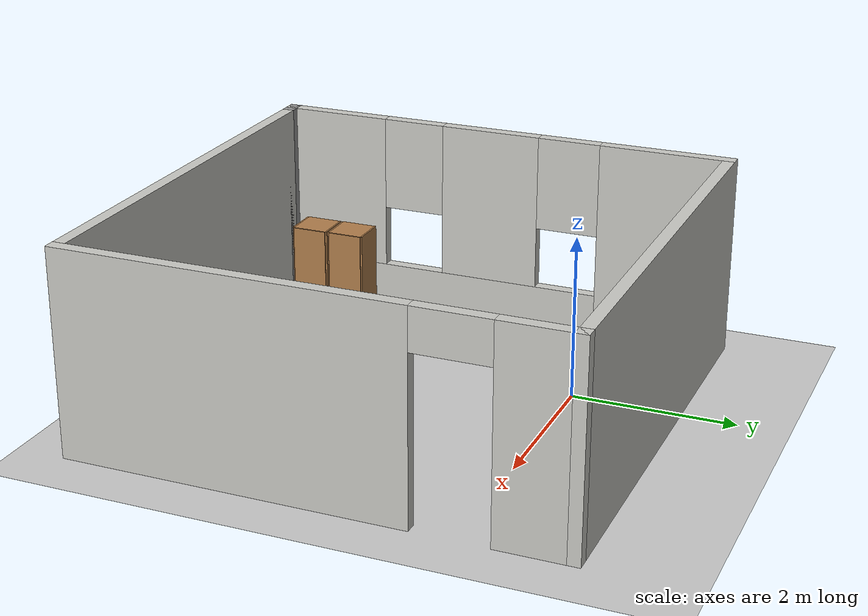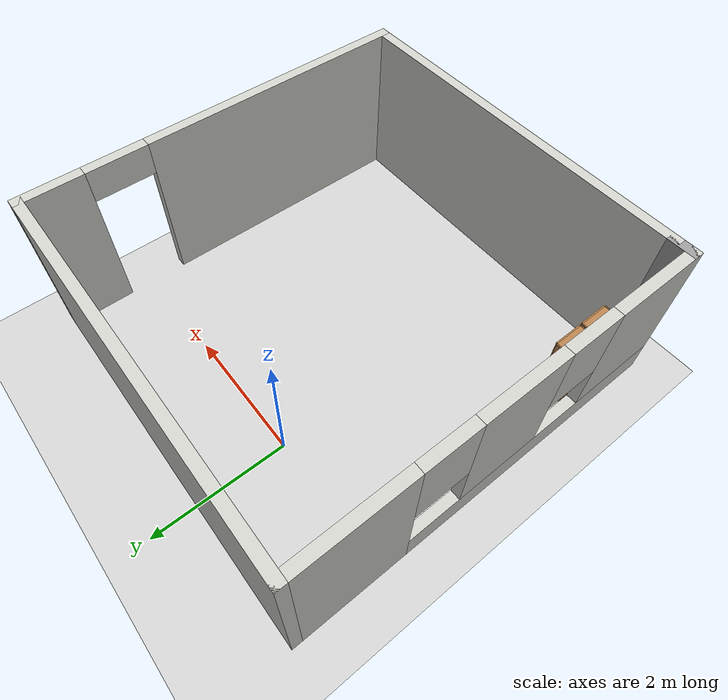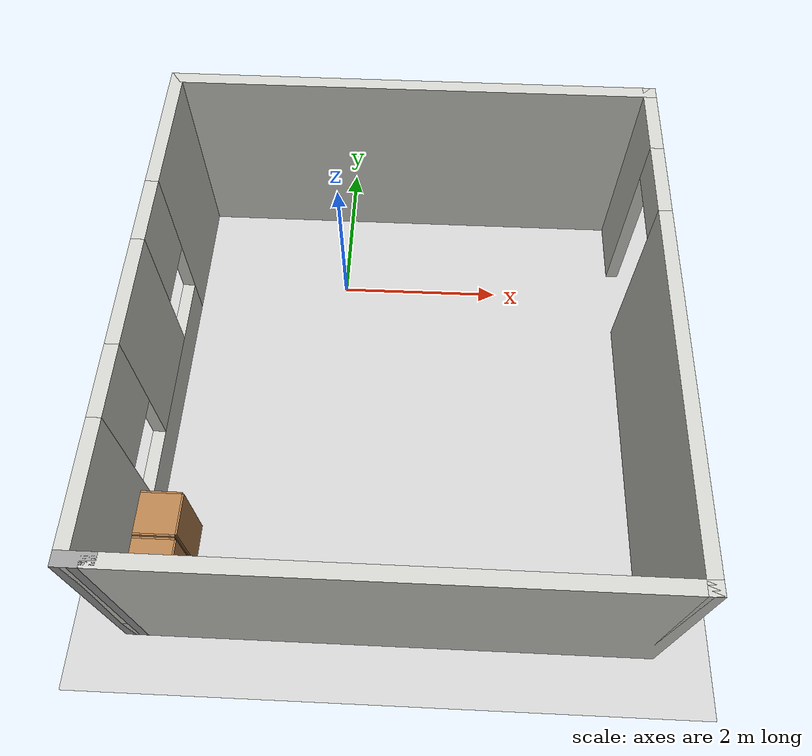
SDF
<sdf version="1.7">
 <world name="default">
  <light name="sun" type="directional">
   <pose>0 0 10 0 -0 0</pose>
   <diffuse>0.8 0.8 0.8 1</diffuse>
   <specular>0.2 0.2 0.2 1</specular>
   <attenuation>
    <range>1000</range>
    <constant>0.9</constant>
    <linear>0.01</linear>
    <quadratic>0.001</quadratic>
   </attenuation>
   <direction>-0.5 0.1 -0.9</direction>
   <spot><inner_angle>0</inner_angle><outer_angle>0</outer_angle><falloff>0</falloff></spot>
  </light>
  <model name="ground_plane">
   <static>1</static>
   <link name="link">
    <collision name="collision">
     <geometry><plane><normal>0 0 1</normal><size>100 100</size></plane></geometry>
     <surface><friction><ode><mu>100</mu><mu2>50</mu2></ode></friction></surface>
    </collision>
    <visual name="visual">
     <cast_shadows>0</cast_shadows>
     <geometry><plane><normal>0 0 1</normal><size>100 100</size></plane></geometry>
     <material>
      <script><uri>file://media/materials/scripts/gazebo.material</uri><name>Gazebo/Grey</name></script>
     </material>
    </visual>
   </link>
  </model>
  <gravity>0 0 -9.8</gravity>
  <magnetic_field>6e-06 2.3e-05 -4.2e-05</magnetic_field>
  <atmosphere type="adiabatic"/>
  <physics type="ode">
   <max_step_size>0.001</max_step_size>
   <real_time_factor>1</real_time_factor>
   <real_time_update_rate>1000</real_time_update_rate>
  </physics>
  <scene><ambient>0.4 0.4 0.4 1</ambient><background>0.7 0.7 0.7 1</background><shadows>1</shadows></scene>
  <audio><device>default</device></audio>
  <spherical_coordinates>
   <surface_model>EARTH_WGS84</surface_model>
   <latitude_deg>0</latitude_deg>
   <longitude_deg>0</longitude_deg>
   <elevation>0</elevation>
   <heading_deg>0</heading_deg>
  </spherical_coordinates>
  <model name="my_class_0">
   <pose>0.8114 -1.6672 0 0 -0 0</pose>
   <link name="Wall_10">
    <collision name="Wall_10_Collision">
     <geometry><box><size>5.5 0.15 2.5</size></box></geometry>
     <pose>0 0 1.25 0 -0 0</pose>
    </collision>
    <visual name="Wall_10_Visual">
     <pose>0 0 1.25 0 -0 0</pose>
     <geometry><box><size>5.5 0.15 2.5</size></box></geometry>
     <material>
      <script><uri>file://media/materials/scripts/gazebo.material</uri><name>Gazebo/CeilingTiled</name></script>
      <ambient>1 1 1 1</ambient>
     </material>
     <meta><layer>0</layer></meta>
    </visual>
    <pose>0.125 -2.925 0 0 -0 0</pose>
   </link>
   <link name="Wall_11">
    <pose>2.8 0 0 0 -0 1.5708</pose>
    <visual name="Wall_11_Visual_0">
     <pose>-0.926025 0 1.25 0 -0 0</pose>
     <geometry><box><size>4.14795 0.15 2.5</size></box></geometry>
     <material>
      <script><uri>file://media/materials/scripts/gazebo.material</uri><name>Gazebo/CeilingTiled</name></script>
      <ambient>1 1 1 1</ambient>
     </material>
     <meta><layer>0</layer></meta>
    </visual>
    <collision name="Wall_11_Collision_0">
     <geometry><box><size>4.14795 0.15 2.5</size></box></geometry>
     <pose>-0.926025 0 1.25 0 -0 0</pose>
    </collision>
    <visual name="Wall_11_Visual_1">
     <pose>2.52398 0 1.25 0 -0 0</pose>
     <geometry><box><size>0.95205 0.15 2.5</size></box></geometry>
     <material>
      <script><uri>file://media/materials/scripts/gazebo.material</uri><name>Gazebo/CeilingTiled</name></script>
      <ambient>1 1 1 1</ambient>
     </material>
     <meta><layer>0</layer></meta>
    </visual>
    <collision name="Wall_11_Collision_1">
     <geometry><box><size>0.95205 0.15 2.5</size></box></geometry>
     <pose>2.52398 0 1.25 0 -0 0</pose>
    </collision>
    <visual name="Wall_11_Visual_2">
     <pose>1.59795 0 2.25 0 -0 0</pose>
     <geometry><box><size>0.9 0.15 0.5</size></box></geometry>
     <material>
      <script><uri>file://media/materials/scripts/gazebo.material</uri><name>Gazebo/CeilingTiled</name></script>
      <ambient>1 1 1 1</ambient>
     </material>
     <meta><layer>0</layer></meta>
    </visual>
    <collision name="Wall_11_Collision_2">
     <geometry><box><size>0.9 0.15 0.5</size></box></geometry>
     <pose>1.59795 0 2.25 0 -0 0</pose>
    </collision>
   </link>
   <link name="Wall_12">
    <collision name="Wall_12_Collision">
     <geometry><box><size>5.75 0.15 2.5</size></box></geometry>
     <pose>0 0 1.25 0 -0 0</pose>
    </collision>
    <visual name="Wall_12_Visual">
     <pose>0 0 1.25 0 -0 0</pose>
     <geometry><box><size>5.75 0.15 2.5</size></box></geometry>
     <material>
      <script><uri>file://media/materials/scripts/gazebo.material</uri><name>Gazebo/CeilingTiled</name></script>
      <ambient>1 1 1 1</ambient>
     </material>
     <meta><layer>0</layer></meta>
    </visual>
    <pose>0 2.925 0 0 -0 3.14159</pose>
   </link>
   <link name="Wall_13">
    <pose>-2.8 0 0 0 -0 -1.5708</pose>
    <visual name="Wall_13_Visual_0">
     <pose>-2.15512 0 1.25 0 -0 0</pose>
     <geometry><box><size>1.68975 0.15 2.5</size></box></geometry>
     <material>
      <script><uri>file://media/materials/scripts/gazebo.material</uri><name>Gazebo/CeilingTiled</name></script>
      <ambient>1 1 1 1</ambient>
     </material>
     <meta><layer>0</layer></meta>
    </visual>
    <collision name="Wall_13_Collision_0">
     <geometry><box><size>1.68975 0.15 2.5</size></box></geometry>
     <pose>-2.15512 0 1.25 0 -0 0</pose>
    </collision>
    <visual name="Wall_13_Visual_1">
     <pose>0.844875 0 0.25 0 -0 0</pose>
     <geometry><box><size>4.31025 0.15 0.5</size></box></geometry>
     <material>
      <script><uri>file://media/materials/scripts/gazebo.material</uri><name>Gazebo/CeilingTiled</name></script>
      <ambient>1 1 1 1</ambient>
     </material>
     <meta><layer>0</layer></meta>
    </visual>
    <collision name="Wall_13_Collision_1">
     <geometry><box><size>4.31025 0.15 0.5</size></box></geometry>
     <pose>0.844875 0 0.25 0 -0 0</pose>
    </collision>
    <visual name="Wall_13_Visual_2">
     <pose>0.134525 0 1.5 0 -0 0</pose>
     <geometry><box><size>1.28955 0.15 2</size></box></geometry>
     <material>
      <script><uri>file://media/materials/scripts/gazebo.material</uri><name>Gazebo/CeilingTiled</name></script>
      <ambient>1 1 1 1</ambient>
     </material>
     <meta><layer>0</layer></meta>
    </visual>
    <collision name="Wall_13_Collision_2">
     <geometry><box><size>1.28955 0.15 2</size></box></geometry>
     <pose>0.134525 0 1.5 0 -0 0</pose>
    </collision>
    <visual name="Wall_13_Visual_3">
     <pose>2.28965 0 1.5 0 -0 0</pose>
     <geometry><box><size>1.4207 0.15 2</size></box></geometry>
     <material>
      <script><uri>file://media/materials/scripts/gazebo.material</uri><name>Gazebo/CeilingTiled</name></script>
      <ambient>1 1 1 1</ambient>
     </material>
     <meta><layer>0</layer></meta>
    </visual>
    <collision name="Wall_13_Collision_3">
     <geometry><box><size>1.4207 0.15 2</size></box></geometry>
     <pose>2.28965 0 1.5 0 -0 0</pose>
    </collision>
    <visual name="Wall_13_Visual_4">
     <pose>-0.91025 0 1.9 0 -0 0</pose>
     <geometry><box><size>0.8 0.15 1.2</size></box></geometry>
     <material>
      <script><uri>file://media/materials/scripts/gazebo.material</uri><name>Gazebo/CeilingTiled</name></script>
      <ambient>1 1 1 1</ambient>
     </material>
     <meta><layer>0</layer></meta>
    </visual>
    <collision name="Wall_13_Collision_4">
     <geometry><box><size>0.8 0.15 1.2</size></box></geometry>
     <pose>-0.91025 0 1.9 0 -0 0</pose>
    </collision>
    <visual name="Wall_13_Visual_5">
     <pose>1.1793 0 1.9 0 -0 0</pose>
     <geometry><box><size>0.8 0.15 1.2</size></box></geometry>
     <material>
      <script><uri>file://media/materials/scripts/gazebo.material</uri><name>Gazebo/CeilingTiled</name></script>
      <ambient>1 1 1 1</ambient>
     </material>
     <meta><layer>0</layer></meta>
    </visual>
    <collision name="Wall_13_Collision_5">
     <geometry><box><size>0.8 0.15 1.2</size></box></geometry>
     <pose>1.1793 0 1.9 0 -0 0</pose>
    </collision>
   </link>
   <link name="Wall_14">
    <collision name="Wall_14_Collision">
     <geometry><box><size>0.4 0.15 2.5</size></box></geometry>
     <pose>0 0 1.25 0 -0 0</pose>
    </collision>
    <visual name="Wall_14_Visual">
     <pose>0 0 1.25 0 -0 0</pose>
     <geometry><box><size>0.4 0.15 2.5</size></box></geometry>
     <material>
      <script><uri>file://media/materials/scripts/gazebo.material</uri><name>Gazebo/Grey</name></script>
      <ambient>1 1 1 1</ambient>
     </material>
     <meta><layer>0</layer></meta>
    </visual>
    <pose>-2.675 -2.925 0 0 -0 0</pose>
   </link>
   <static>1</static>
  </model>
  <model name="cabinet">
   <static>1</static>
   <link name="cabinet_bottom_plate">
    <inertial>
     <pose>0 0 -1 0 -0 0</pose>
     <inertia><ixx>2.05</ixx><ixy>0</ixy><ixz>0</ixz><iyy>2.05</iyy><iyz>0</iyz><izz>2.05</izz></inertia>
     <mass>25</mass>
    </inertial>
    <collision name="cabinet_bottom_plate_geom">
     <pose>0 0 0.01 0 -0 0</pose>
     <geometry><box><size>0.45 0.45 0.02</size></box></geometry>
    </collision>
    <visual name="cabinet_bottom_plate_geom_visual">
     <pose>0 0 0.01 0 -0 0</pose>
     <geometry><box><size>0.45 0.45 0.02</size></box></geometry>
     <material>
      <script><uri>file://media/materials/scripts/gazebo.material</uri><name>Gazebo/Wood</name></script>
     </material>
    </visual>
    <collision name="cabinet_bottom_plate_geom_cabinet_back_plate">
     <pose>0.235 0 0.51 0 -0 0</pose>
     <geometry><box><size>0.02 0.45 1.02</size></box></geometry>
    </collision>
    <visual name="cabinet_bottom_plate_geom_cabinet_back_plate_visual">
     <pose>0.235 0 0.51 0 -0 0</pose>
     <geometry><box><size>0.02 0.45 1.02</size></box></geometry>
     <material>
      <script><uri>file://media/materials/scripts/gazebo.material</uri><name>Gazebo/Wood</name></script>
     </material>
    </visual>
    <collision name="cabinet_bottom_plate_geom_cabinet_left_plate">
     <pose>0 0.235 0.51 0 -0 0</pose>
     <geometry><box><size>0.45 0.02 1.02</size></box></geometry>
    </collision>
    <visual name="cabinet_bottom_plate_geom_cabinet_left_plate_visual">
     <pose>0 0.235 0.51 0 -0 0</pose>
     <geometry><box><size>0.45 0.02 1.02</size></box></geometry>
     <material>
      <script><uri>file://media/materials/scripts/gazebo.material</uri><name>Gazebo/Wood</name></script>
     </material>
    </visual>
    <collision name="cabinet_bottom_plate_geom_cabinet_middle_plate">
     <pose>0 0 0.51 0 -0 0</pose>
     <geometry><box><size>0.45 0.45 0.02</size></box></geometry>
    </collision>
    <visual name="cabinet_bottom_plate_geom_cabinet_middle_plate_visual">
     <pose>0 0 0.51 0 -0 0</pose>
     <geometry><box><size>0.45 0.45 0.02</size></box></geometry>
     <material>
      <script><uri>file://media/materials/scripts/gazebo.material</uri><name>Gazebo/Wood</name></script>
     </material>
    </visual>
    <collision name="cabinet_bottom_plate_geom_cabinet_right_plate">
     <pose>0 -0.235 0.51 0 -0 0</pose>
     <geometry><box><size>0.45 0.02 1.02</size></box></geometry>
    </collision>
    <visual name="cabinet_bottom_plate_geom_cabinet_right_plate_visual">
     <pose>0 -0.235 0.51 0 -0 0</pose>
     <geometry><box><size>0.45 0.02 1.02</size></box></geometry>
     <material>
      <script><uri>file://media/materials/scripts/gazebo.material</uri><name>Gazebo/Wood</name></script>
     </material>
    </visual>
    <collision name="cabinet_bottom_plate_geom_cabinet_top_plate">
     <pose>0 0 1.01 0 -0 0</pose>
     <geometry><box><size>0.45 0.45 0.02</size></box></geometry>
    </collision>
    <visual name="cabinet_bottom_plate_geom_cabinet_top_plate_visual">
     <pose>0 0 1.01 0 -0 0</pose>
     <geometry><box><size>0.45 0.45 0.02</size></box></geometry>
     <material>
      <script><uri>file://media/materials/scripts/gazebo.material</uri><name>Gazebo/Wood</name></script>
     </material>
    </visual>
   </link>
   <pose>-1.66492 -4.13543 0 0 -0 0</pose>
  </model>
  <model name="cabinet_0">
   <static>1</static>
   <link name="cabinet_bottom_plate">
    <inertial>
     <pose>0 0 -1 0 -0 0</pose>
     <inertia><ixx>2.05</ixx><ixy>0</ixy><ixz>0</ixz><iyy>2.05</iyy><iyz>0</iyz><izz>2.05</izz></inertia>
     <mass>25</mass>
    </inertial>
    <collision name="cabinet_bottom_plate_geom">
     <pose>0 0 0.01 0 -0 0</pose>
     <geometry><box><size>0.45 0.45 0.02</size></box></geometry>
    </collision>
    <visual name="cabinet_bottom_plate_geom_visual">
     <pose>0 0 0.01 0 -0 0</pose>
     <geometry><box><size>0.45 0.45 0.02</size></box></geometry>
     <material>
      <script><uri>file://media/materials/scripts/gazebo.material</uri><name>Gazebo/Wood</name></script>
     </material>
    </visual>
    <collision name="cabinet_bottom_plate_geom_cabinet_back_plate">
     <pose>0.235 0 0.51 0 -0 0</pose>
     <geometry><box><size>0.02 0.45 1.02</size></box></geometry>
    </collision>
    <visual name="cabinet_bottom_plate_geom_cabinet_back_plate_visual">
     <pose>0.235 0 0.51 0 -0 0</pose>
     <geometry><box><size>0.02 0.45 1.02</size></box></geometry>
     <material>
      <script><uri>file://media/materials/scripts/gazebo.material</uri><name>Gazebo/Wood</name></script>
     </material>
    </visual>
    <collision name="cabinet_bottom_plate_geom_cabinet_left_plate">
     <pose>0 0.235 0.51 0 -0 0</pose>
     <geometry><box><size>0.45 0.02 1.02</size></box></geometry>
    </collision>
    <visual name="cabinet_bottom_plate_geom_cabinet_left_plate_visual">
     <pose>0 0.235 0.51 0 -0 0</pose>
     <geometry><box><size>0.45 0.02 1.02</size></box></geometry>
     <material>
      <script><uri>file://media/materials/scripts/gazebo.material</uri><name>Gazebo/Wood</name></script>
     </material>
    </visual>
    <collision name="cabinet_bottom_plate_geom_cabinet_middle_plate">
     <pose>0 0 0.51 0 -0 0</pose>
     <geometry><box><size>0.45 0.45 0.02</size></box></geometry>
    </collision>
    <visual name="cabinet_bottom_plate_geom_cabinet_middle_plate_visual">
     <pose>0 0 0.51 0 -0 0</pose>
     <geometry><box><size>0.45 0.45 0.02</size></box></geometry>
     <material>
      <script><uri>file://media/materials/scripts/gazebo.material</uri><name>Gazebo/Wood</name></script>
     </material>
    </visual>
    <collision name="cabinet_bottom_plate_geom_cabinet_right_plate">
     <pose>0 -0.235 0.51 0 -0 0</pose>
     <geometry><box><size>0.45 0.02 1.02</size></box></geometry>
    </collision>
    <visual name="cabinet_bottom_plate_geom_cabinet_right_plate_visual">
     <pose>0 -0.235 0.51 0 -0 0</pose>
     <geometry><box><size>0.45 0.02 1.02</size></box></geometry>
     <material>
      <script><uri>file://media/materials/scripts/gazebo.material</uri><name>Gazebo/Wood</name></script>
     </material>
    </visual>
    <collision name="cabinet_bottom_plate_geom_cabinet_top_plate">
     <pose>0 0 1.01 0 -0 0</pose>
     <geometry><box><size>0.45 0.45 0.02</size></box></geometry>
    </collision>
    <visual name="cabinet_bottom_plate_geom_cabinet_top_plate_visual">
     <pose>0 0 1.01 0 -0 0</pose>
     <geometry><box><size>0.45 0.45 0.02</size></box></geometry>
     <material>
      <script><uri>file://media/materials/scripts/gazebo.material</uri><name>Gazebo/Wood</name></script>
     </material>
    </visual>
   </link>
   <pose>-1.67035 -3.6305 0 0 -0 0</pose>
  </model>
 </world>
</sdf>
